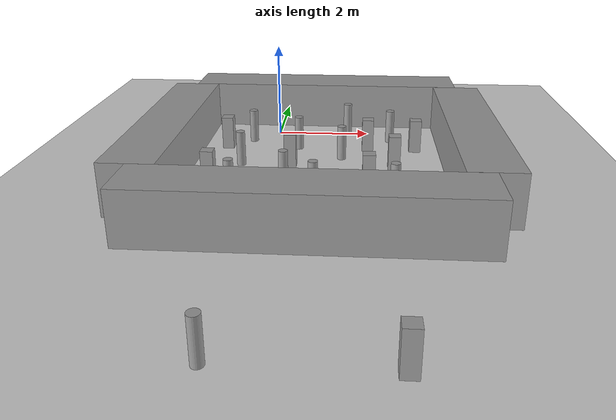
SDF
<sdf version="1.5">
 <world name="default">
  <light name="sun" type="directional">
   <pose>0 0 10 0 -0 0</pose>
   <diffuse>0.8 0.8 0.8 1</diffuse>
   <specular>0.2 0.2 0.2 1</specular>
   <attenuation>
    <range>1000</range>
    <constant>0.9</constant>
    <linear>0.01</linear>
    <quadratic>0.001</quadratic>
   </attenuation>
   <direction>-0.5 0.1 -0.9</direction>
  </light>
  <model name="ground_plane">
   <static>1</static>
   <link name="link">
    <collision name="collision">
     <geometry><plane><normal>0 0 1</normal><size>100 100</size></plane></geometry>
     <surface><friction><ode><mu>100</mu><mu2>50</mu2></ode></friction></surface>
    </collision>
    <visual name="visual">
     <cast_shadows>0</cast_shadows>
     <geometry><plane><normal>0 0 1</normal><size>100 100</size></plane></geometry>
     <material>
      <script><uri>file://media/materials/scripts/gazebo.material</uri><name>Gazebo/Grey</name></script>
     </material>
    </visual>
   </link>
  </model>
  <physics name="default_physics" default="0" type="ode">
   <max_step_size>0.001</max_step_size>
   <real_time_factor>1</real_time_factor>
   <real_time_update_rate>1000</real_time_update_rate>
   <gravity>0 0 -9.8</gravity>
   <magnetic_field>5.5645e-06 2.28758e-05 -4.23884e-05</magnetic_field>
  </physics>
  <scene><ambient>0.4 0.4 0.4 1</ambient><background>0.7 0.7 0.7 1</background><shadows>1</shadows></scene>
  <spherical_coordinates>
   <surface_model>EARTH_WGS84</surface_model>
   <latitude_deg>0</latitude_deg>
   <longitude_deg>0</longitude_deg>
   <elevation>0</elevation>
   <heading_deg>0</heading_deg>
  </spherical_coordinates>
  <model name="unit_box_1">
   <pose>1.00462 1.0062 0.499996 0 -1e-06 0.000522</pose>
   <link name="link">
    <inertial>
     <mass>1</mass>
     <inertia><ixx>1</ixx><ixy>0</ixy><ixz>0</ixz><iyy>1</iyy><iyz>0</iyz><izz>1</izz></inertia>
    </inertial>
    <collision name="collision"><geometry><box><size>5.99218 1 1</size></box></geometry></collision>
    <visual name="visual">
     <geometry><box><size>5.99217 1 1</size></box></geometry>
     <material>
      <script><uri>file://media/materials/scripts/gazebo.material</uri><name>Gazebo/Grey</name></script>
     </material>
    </visual>
   </link>
  </model>
  <model name="unit_box_1_clone">
   <pose>0.999889 -5.00566 0.499882 -3.30872e-24 3.9e-05 -0.000664</pose>
   <link name="link">
    <inertial>
     <mass>1</mass>
     <inertia><ixx>1</ixx><ixy>0</ixy><ixz>0</ixz><iyy>1</iyy><iyz>0</iyz><izz>1</izz></inertia>
    </inertial>
    <collision name="collision"><geometry><box><size>5.99218 1 1</size></box></geometry></collision>
    <visual name="visual">
     <geometry><box><size>5.99217 1 1</size></box></geometry>
     <material>
      <script><uri>file://media/materials/scripts/gazebo.material</uri><name>Gazebo/Grey</name></script>
     </material>
    </visual>
   </link>
  </model>
  <model name="unit_box_2">
   <pose>4.00229 -2.00005 0.499997 -1e-06 -1e-06 -4.7e-05</pose>
   <link name="link">
    <inertial>
     <mass>1</mass>
     <inertia><ixx>1</ixx><ixy>0</ixy><ixz>0</ixz><iyy>1</iyy><iyz>0</iyz><izz>1</izz></inertia>
    </inertial>
    <collision name="collision"><geometry><box><size>1 5.00707 1</size></box></geometry></collision>
    <visual name="visual">
     <geometry><box><size>1 5.00707 1</size></box></geometry>
     <material>
      <script><uri>file://media/materials/scripts/gazebo.material</uri><name>Gazebo/Grey</name></script>
     </material>
    </visual>
   </link>
  </model>
  <model name="unit_box_2_clone">
   <pose>-2.00223 -2 0.499951 -2e-05 -1.03398e-25 -4.3e-05</pose>
   <link name="link">
    <inertial>
     <mass>1</mass>
     <inertia><ixx>1</ixx><ixy>0</ixy><ixz>0</ixz><iyy>1</iyy><iyz>0</iyz><izz>1</izz></inertia>
    </inertial>
    <collision name="collision"><geometry><box><size>1 5.00707 1</size></box></geometry></collision>
    <visual name="visual">
     <geometry><box><size>1 5.00707 1</size></box></geometry>
     <material>
      <script><uri>file://media/materials/scripts/gazebo.material</uri><name>Gazebo/Grey</name></script>
     </material>
    </visual>
   </link>
  </model>
  <model name="unit_box_3">
   <pose>2.40288 -8 0.344544 -1e-06 -0 -1.6e-05</pose>
   <link name="link">
    <inertial>
     <mass>1</mass>
     <inertia><ixx>1</ixx><ixy>0</ixy><ixz>0</ixz><iyy>1</iyy><iyz>0</iyz><izz>1</izz></inertia>
    </inertial>
    <collision name="collision">
     <geometry><box><size>0.237796 0.224809 0.689088</size></box></geometry>
    </collision>
    <visual name="visual">
     <geometry><box><size>0.237796 0.224809 0.689088</size></box></geometry>
     <material>
      <script><uri>file://media/materials/scripts/gazebo.material</uri><name>Gazebo/Grey</name></script>
     </material>
    </visual>
   </link>
  </model>
  <model name="unit_cylinder_2">
   <pose>1e-06 -8 0.354648 0 -0 2.5e-05</pose>
   <link name="link">
    <inertial>
     <mass>1</mass>
     <inertia><ixx>1</ixx><ixy>0</ixy><ixz>0</ixz><iyy>1</iyy><iyz>0</iyz><izz>1</izz></inertia>
    </inertial>
    <collision name="collision">
     <geometry><cylinder><radius>0.0892066</radius><length>0.7093</length></cylinder></geometry>
    </collision>
    <visual name="visual">
     <geometry><cylinder><radius>0.0892065</radius><length>0.7093</length></cylinder></geometry>
     <material>
      <script><uri>file://media/materials/scripts/gazebo.material</uri><name>Gazebo/Grey</name></script>
     </material>
    </visual>
   </link>
  </model>
  <model name="unit_box_3_clone">
   <pose>2 -3 0.344535 -0 -0 -1.7e-05</pose>
   <link name="link">
    <inertial>
     <mass>1</mass>
     <inertia><ixx>1</ixx><ixy>0</ixy><ixz>0</ixz><iyy>1</iyy><iyz>0</iyz><izz>1</izz></inertia>
    </inertial>
    <collision name="collision">
     <geometry><box><size>0.237796 0.224809 0.689088</size></box></geometry>
    </collision>
    <visual name="visual">
     <geometry><box><size>0.237796 0.224809 0.689088</size></box></geometry>
     <material>
      <script><uri>file://media/materials/scripts/gazebo.material</uri><name>Gazebo/Grey</name></script>
     </material>
    </visual>
   </link>
  </model>
  <model name="unit_box_3_clone_0">
   <pose>2 -0.99999 0.344544 1e-06 3e-06 -2.6e-05</pose>
   <link name="link">
    <inertial>
     <mass>1</mass>
     <inertia><ixx>1</ixx><ixy>0</ixy><ixz>0</ixz><iyy>1</iyy><iyz>0</iyz><izz>1</izz></inertia>
    </inertial>
    <collision name="collision">
     <geometry><box><size>0.237796 0.224809 0.689088</size></box></geometry>
    </collision>
    <visual name="visual">
     <geometry><box><size>0.237796 0.224809 0.689088</size></box></geometry>
     <material>
      <script><uri>file://media/materials/scripts/gazebo.material</uri><name>Gazebo/Grey</name></script>
     </material>
    </visual>
   </link>
  </model>
  <model name="unit_box_3_clone_1">
   <pose>2.51523 -1.99999 0.344546 -1.5e-05 5e-06 -2.6e-05</pose>
   <link name="link">
    <inertial>
     <mass>1</mass>
     <inertia><ixx>1</ixx><ixy>0</ixy><ixz>0</ixz><iyy>1</iyy><iyz>0</iyz><izz>1</izz></inertia>
    </inertial>
    <collision name="collision">
     <geometry><box><size>0.237796 0.224809 0.689088</size></box></geometry>
    </collision>
    <visual name="visual">
     <geometry><box><size>0.237796 0.224809 0.689088</size></box></geometry>
     <material>
      <script><uri>file://media/materials/scripts/gazebo.material</uri><name>Gazebo/Grey</name></script>
     </material>
    </visual>
   </link>
  </model>
  <model name="unit_cylinder_2_clone">
   <pose>0.412313 -3 0.354642 0 -0 3.4e-05</pose>
   <link name="link">
    <inertial>
     <mass>1</mass>
     <inertia><ixx>1</ixx><ixy>0</ixy><ixz>0</ixz><iyy>1</iyy><iyz>0</iyz><izz>1</izz></inertia>
    </inertial>
    <collision name="collision">
     <geometry><cylinder><radius>0.0892066</radius><length>0.7093</length></cylinder></geometry>
    </collision>
    <visual name="visual">
     <geometry><cylinder><radius>0.0892065</radius><length>0.7093</length></cylinder></geometry>
     <material>
      <script><uri>file://media/materials/scripts/gazebo.material</uri><name>Gazebo/Grey</name></script>
     </material>
    </visual>
   </link>
  </model>
  <model name="unit_cylinder_2_clone_0">
   <pose>-0.557313 -2 0.354649 0 -0 2.6e-05</pose>
   <link name="link">
    <inertial>
     <mass>1</mass>
     <inertia><ixx>1</ixx><ixy>0</ixy><ixz>0</ixz><iyy>1</iyy><iyz>0</iyz><izz>1</izz></inertia>
    </inertial>
    <collision name="collision">
     <geometry><cylinder><radius>0.0892066</radius><length>0.7093</length></cylinder></geometry>
    </collision>
    <visual name="visual">
     <geometry><cylinder><radius>0.0892065</radius><length>0.7093</length></cylinder></geometry>
     <material>
      <script><uri>file://media/materials/scripts/gazebo.material</uri><name>Gazebo/Grey</name></script>
     </material>
    </visual>
   </link>
  </model>
  <model name="unit_cylinder_2_clone_1">
   <pose>0.529623 -0.999999 0.354641 0 -0 3.5e-05</pose>
   <link name="link">
    <inertial>
     <mass>1</mass>
     <inertia><ixx>1</ixx><ixy>0</ixy><ixz>0</ixz><iyy>1</iyy><iyz>0</iyz><izz>1</izz></inertia>
    </inertial>
    <collision name="collision">
     <geometry><cylinder><radius>0.0892066</radius><length>0.7093</length></cylinder></geometry>
    </collision>
    <visual name="visual">
     <geometry><cylinder><radius>0.0892065</radius><length>0.7093</length></cylinder></geometry>
     <material>
      <script><uri>file://media/materials/scripts/gazebo.material</uri><name>Gazebo/Grey</name></script>
     </material>
    </visual>
   </link>
  </model>
  <model name="unit_cylinder_2_clone_2">
   <pose>-0.512816 -0.578653 0.354649 -1e-06 -0 2.5e-05</pose>
   <link name="link">
    <inertial>
     <mass>1</mass>
     <inertia><ixx>1</ixx><ixy>0</ixy><ixz>0</ixz><iyy>1</iyy><iyz>0</iyz><izz>1</izz></inertia>
    </inertial>
    <collision name="collision">
     <geometry><cylinder><radius>0.0892066</radius><length>0.7093</length></cylinder></geometry>
    </collision>
    <visual name="visual">
     <geometry><cylinder><radius>0.0892065</radius><length>0.7093</length></cylinder></geometry>
     <material>
      <script><uri>file://media/materials/scripts/gazebo.material</uri><name>Gazebo/Grey</name></script>
     </material>
    </visual>
   </link>
  </model>
  <model name="unit_cylinder_2_clone_3">
   <pose>1.45821 -1.55635 0.354642 0 -0 2.4e-05</pose>
   <link name="link">
    <inertial>
     <mass>1</mass>
     <inertia><ixx>1</ixx><ixy>0</ixy><ixz>0</ixz><iyy>1</iyy><iyz>0</iyz><izz>1</izz></inertia>
    </inertial>
    <collision name="collision">
     <geometry><cylinder><radius>0.0892066</radius><length>0.7093</length></cylinder></geometry>
    </collision>
    <visual name="visual">
     <geometry><cylinder><radius>0.0892065</radius><length>0.7093</length></cylinder></geometry>
     <material>
      <script><uri>file://media/materials/scripts/gazebo.material</uri><name>Gazebo/Grey</name></script>
     </material>
    </visual>
   </link>
  </model>
  <model name="unit_cylinder_2_clone_4">
   <pose>1.55356 1e-06 0.354642 0 -0 2.2e-05</pose>
   <link name="link">
    <inertial>
     <mass>1</mass>
     <inertia><ixx>1</ixx><ixy>0</ixy><ixz>0</ixz><iyy>1</iyy><iyz>0</iyz><izz>1</izz></inertia>
    </inertial>
    <collision name="collision">
     <geometry><cylinder><radius>0.0892066</radius><length>0.7093</length></cylinder></geometry>
    </collision>
    <visual name="visual">
     <geometry><cylinder><radius>0.0892065</radius><length>0.7093</length></cylinder></geometry>
     <material>
      <script><uri>file://media/materials/scripts/gazebo.material</uri><name>Gazebo/Grey</name></script>
     </material>
    </visual>
   </link>
  </model>
  <model name="unit_cylinder_2_clone_5">
   <pose>2.49084 -0.460843 0.354642 0 -0 2.4e-05</pose>
   <link name="link">
    <inertial>
     <mass>1</mass>
     <inertia><ixx>1</ixx><ixy>0</ixy><ixz>0</ixz><iyy>1</iyy><iyz>0</iyz><izz>1</izz></inertia>
    </inertial>
    <collision name="collision">
     <geometry><cylinder><radius>0.0892066</radius><length>0.7093</length></cylinder></geometry>
    </collision>
    <visual name="visual">
     <geometry><cylinder><radius>0.0892065</radius><length>0.7093</length></cylinder></geometry>
     <material>
      <script><uri>file://media/materials/scripts/gazebo.material</uri><name>Gazebo/Grey</name></script>
     </material>
    </visual>
   </link>
  </model>
  <model name="unit_cylinder_2_clone_6">
   <pose>2.46061 -3.48488 0.354649 0 -0 2.4e-05</pose>
   <link name="link">
    <inertial>
     <mass>1</mass>
     <inertia><ixx>1</ixx><ixy>0</ixy><ixz>0</ixz><iyy>1</iyy><iyz>0</iyz><izz>1</izz></inertia>
    </inertial>
    <collision name="collision">
     <geometry><cylinder><radius>0.0892066</radius><length>0.7093</length></cylinder></geometry>
    </collision>
    <visual name="visual">
     <geometry><cylinder><radius>0.0892065</radius><length>0.7093</length></cylinder></geometry>
     <material>
      <script><uri>file://media/materials/scripts/gazebo.material</uri><name>Gazebo/Grey</name></script>
     </material>
    </visual>
   </link>
  </model>
  <model name="unit_cylinder_2_clone_7">
   <pose>1 -3.47844 0.354642 0 -0 2.5e-05</pose>
   <link name="link">
    <inertial>
     <mass>1</mass>
     <inertia><ixx>1</ixx><ixy>0</ixy><ixz>0</ixz><iyy>1</iyy><iyz>0</iyz><izz>1</izz></inertia>
    </inertial>
    <collision name="collision">
     <geometry><cylinder><radius>0.0892066</radius><length>0.7093</length></cylinder></geometry>
    </collision>
    <visual name="visual">
     <geometry><cylinder><radius>0.0892065</radius><length>0.7093</length></cylinder></geometry>
     <material>
      <script><uri>file://media/materials/scripts/gazebo.material</uri><name>Gazebo/Grey</name></script>
     </material>
    </visual>
   </link>
  </model>
  <model name="unit_cylinder_2_clone_8">
   <pose>-0.515873 -3.4859 0.354649 1e-06 -1e-06 2.4e-05</pose>
   <link name="link">
    <inertial>
     <mass>1</mass>
     <inertia><ixx>1</ixx><ixy>0</ixy><ixz>0</ixz><iyy>1</iyy><iyz>0</iyz><izz>1</izz></inertia>
    </inertial>
    <collision name="collision">
     <geometry><cylinder><radius>0.0892066</radius><length>0.7093</length></cylinder></geometry>
    </collision>
    <visual name="visual">
     <geometry><cylinder><radius>0.0892065</radius><length>0.7093</length></cylinder></geometry>
     <material>
      <script><uri>file://media/materials/scripts/gazebo.material</uri><name>Gazebo/Grey</name></script>
     </material>
    </visual>
   </link>
  </model>
  <model name="unit_box_3_clone_2">
   <pose>0.442811 -2 0.344544 -1e-06 2e-06 3e-06</pose>
   <link name="link">
    <inertial>
     <mass>1</mass>
     <inertia><ixx>1</ixx><ixy>0</ixy><ixz>0</ixz><iyy>1</iyy><iyz>0</iyz><izz>1</izz></inertia>
    </inertial>
    <collision name="collision">
     <geometry><box><size>0.237796 0.224809 0.689088</size></box></geometry>
    </collision>
    <visual name="visual">
     <geometry><box><size>0.237796 0.224809 0.689088</size></box></geometry>
     <material>
      <script><uri>file://media/materials/scripts/gazebo.material</uri><name>Gazebo/Grey</name></script>
     </material>
    </visual>
   </link>
  </model>
  <model name="unit_box_3_clone_3">
   <pose>-1 -0.999999 0.344544 0 -0 -1.2e-05</pose>
   <link name="link">
    <inertial>
     <mass>1</mass>
     <inertia><ixx>1</ixx><ixy>0</ixy><ixz>0</ixz><iyy>1</iyy><iyz>0</iyz><izz>1</izz></inertia>
    </inertial>
    <collision name="collision">
     <geometry><box><size>0.237796 0.224809 0.689088</size></box></geometry>
    </collision>
    <visual name="visual">
     <geometry><box><size>0.237796 0.224809 0.689088</size></box></geometry>
     <material>
      <script><uri>file://media/materials/scripts/gazebo.material</uri><name>Gazebo/Grey</name></script>
     </material>
    </visual>
   </link>
  </model>
  <model name="unit_box_3_clone_4">
   <pose>-0.999998 -3 0.344544 2e-06 2e-06 -2e-06</pose>
   <link name="link">
    <inertial>
     <mass>1</mass>
     <inertia><ixx>1</ixx><ixy>0</ixy><ixz>0</ixz><iyy>1</iyy><iyz>0</iyz><izz>1</izz></inertia>
    </inertial>
    <collision name="collision">
     <geometry><box><size>0.237796 0.224809 0.689088</size></box></geometry>
    </collision>
    <visual name="visual">
     <geometry><box><size>0.237796 0.224809 0.689088</size></box></geometry>
     <material>
      <script><uri>file://media/materials/scripts/gazebo.material</uri><name>Gazebo/Grey</name></script>
     </material>
    </visual>
   </link>
  </model>
  <model name="unit_box_3_clone_5">
   <pose>3 -0.999997 0.344544 -1e-06 -1e-06 -1.6e-05</pose>
   <link name="link">
    <inertial>
     <mass>1</mass>
     <inertia><ixx>1</ixx><ixy>0</ixy><ixz>0</ixz><iyy>1</iyy><iyz>0</iyz><izz>1</izz></inertia>
    </inertial>
    <collision name="collision">
     <geometry><box><size>0.237796 0.224809 0.689088</size></box></geometry>
    </collision>
    <visual name="visual">
     <geometry><box><size>0.237796 0.224809 0.689088</size></box></geometry>
     <material>
      <script><uri>file://media/materials/scripts/gazebo.material</uri><name>Gazebo/Grey</name></script>
     </material>
    </visual>
   </link>
  </model>
  <model name="unit_box_3_clone_6">
   <pose>1e-06 -4 0.344544 1e-06 1e-06 -1.8e-05</pose>
   <link name="link">
    <inertial>
     <mass>1</mass>
     <inertia><ixx>1</ixx><ixy>0</ixy><ixz>0</ixz><iyy>1</iyy><iyz>0</iyz><izz>1</izz></inertia>
    </inertial>
    <collision name="collision">
     <geometry><box><size>0.237796 0.224809 0.689088</size></box></geometry>
    </collision>
    <visual name="visual">
     <geometry><box><size>0.237796 0.224809 0.689088</size></box></geometry>
     <material>
      <script><uri>file://media/materials/scripts/gazebo.material</uri><name>Gazebo/Grey</name></script>
     </material>
    </visual>
   </link>
  </model>
 </world>
</sdf>
